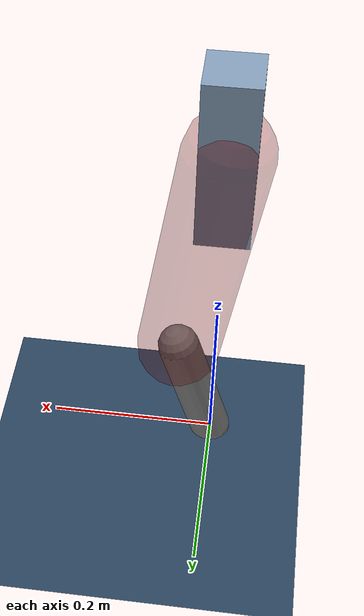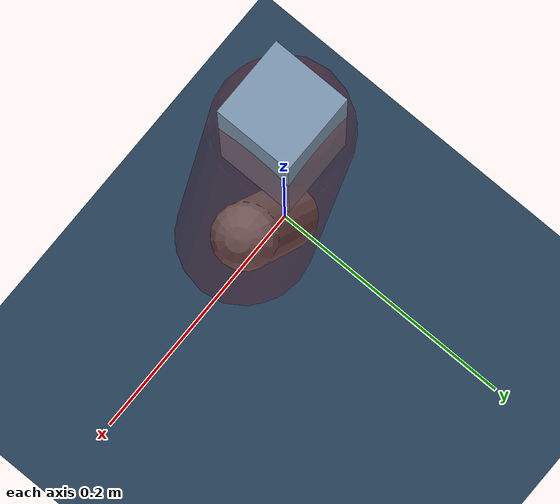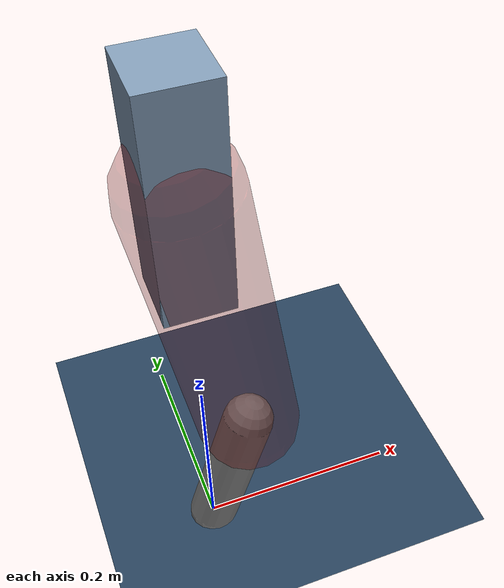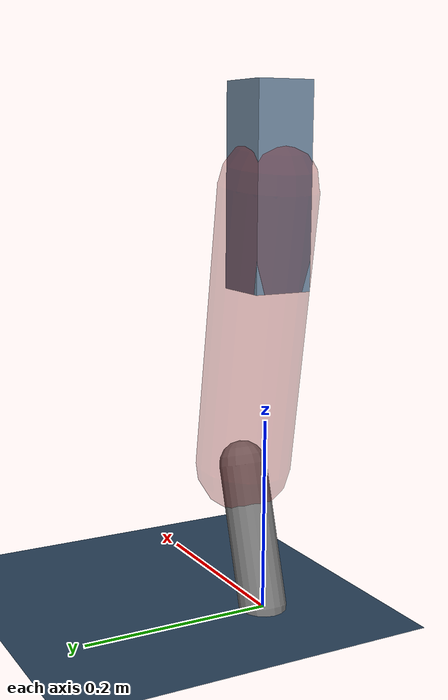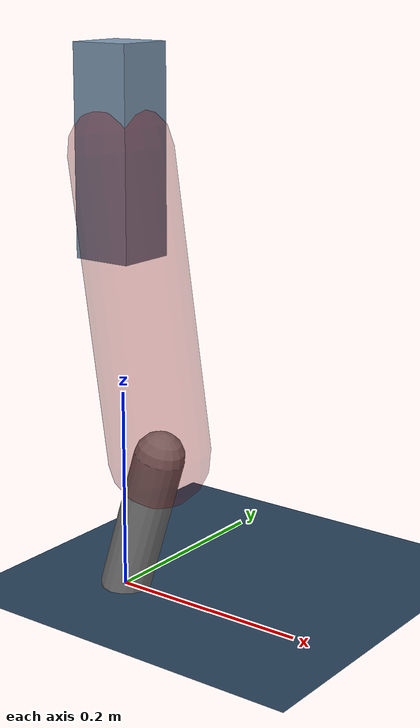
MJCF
<mujoco model="Hopper2D">
	<compiler inertiafromgeom="true" angle="radian" />
	<option timestep="0.001" integrator="implicit" cone="elliptic" solver="Newton" tolerance="1e-10" />

	<default>
		<geom contype="1" conaffinity="1" condim="3" friction="2 0.005 0.0001" solref="0.005 1" />
		<joint limited="true" damping="0.1" />
	</default>

	<asset>
		<texture name="skybox" type="skybox" builtin="gradient" rgb1=".4 .6 .8" rgb2="0 0 0" width="800" height="800" />
		<texture name="grid" type="2d" builtin="checker" rgb1=".1 .2 .3" rgb2=".2 .3 .4" width="300" height="300" mark="edge" markrgb=".2 .3 .4" />
		<material name="ground" texture="grid" texrepeat="1 1" texuniform="true" reflectance="0.1" />
		<material name="leg" rgba="0.5 0.6 0.7 1" />
	</asset>

	<worldbody>

		<geom name="floor" type="plane" size="5 5 0.25" material="ground" />

		<light directional="false" diffuse="0.8 0.8 0.8" specular="0.3 0.3 0.3" pos="0 0 2" dir="0 0 -1" />
		<light mode="targetbodycom" target="base" directional="false" diffuse="0.8 0.8 0.8" specular="0.3 0.3 0.3" pos="0 0 2" dir="0 0 -1" />

		<camera name="fixed" pos="0 -2 1" xyaxes="1 0 0 0 0 1" />
		<camera name="tracking" mode="trackcom" pos="0 -3 1" />

		<body name="root" pos="0 0 0.4337960524698725">
			<joint name="slide_x" type="slide" axis="1 0 0" range="-100 100" />
			<joint name="slide_z" type="slide" axis="0 0 1" range="0 10" />

			<body name="base" pos="0 0 0">
				<geom name="torso" type="box" size="0.03 0.03 0.1" mass="2.142" material="leg" />

				<body name="link1" pos="0 0 0" euler="0 1.4196450202828812 0">
					<joint type="hinge" axis="0 -1 0" pos="0 0 0" name="hinge1" limited="true" range="-3.14 3.14" stiffness="0" damping="0.1" />
					<geom name="thigh" type="capsule" fromto="0 0 0 0.29358799936382995 0 0" size="0.05" rgba="0.5 0 0 0.3" mass="0.9714875982823409" />

					<body name="link2" pos="0.29358799936382995 0 0" euler="0 0.4498826464878027 0">
						<joint type="hinge" axis="0 -1 0" pos="0 0 0" name="hinge2" limited="true" range="-3.14 3.14" stiffness="0" damping="0.1" />
						<geom name="shank" type="capsule" fromto="0 0 0 0.15020805310604257 0 0" size="0.025" mass="0.35788724779543835" />

					</body>
				</body>
			</body>
		</body>
	</worldbody>

	<actuator>
		<motor name="torque1" joint="hinge1" ctrlrange="-63.72597751040638 63.72597751040638" ctrllimited="true" gear="1" />
		<motor name="torque2" joint="hinge2" ctrlrange="-77.93073611537056 77.93073611537056" ctrllimited="true" gear="1" />
	</actuator>
</mujoco>
